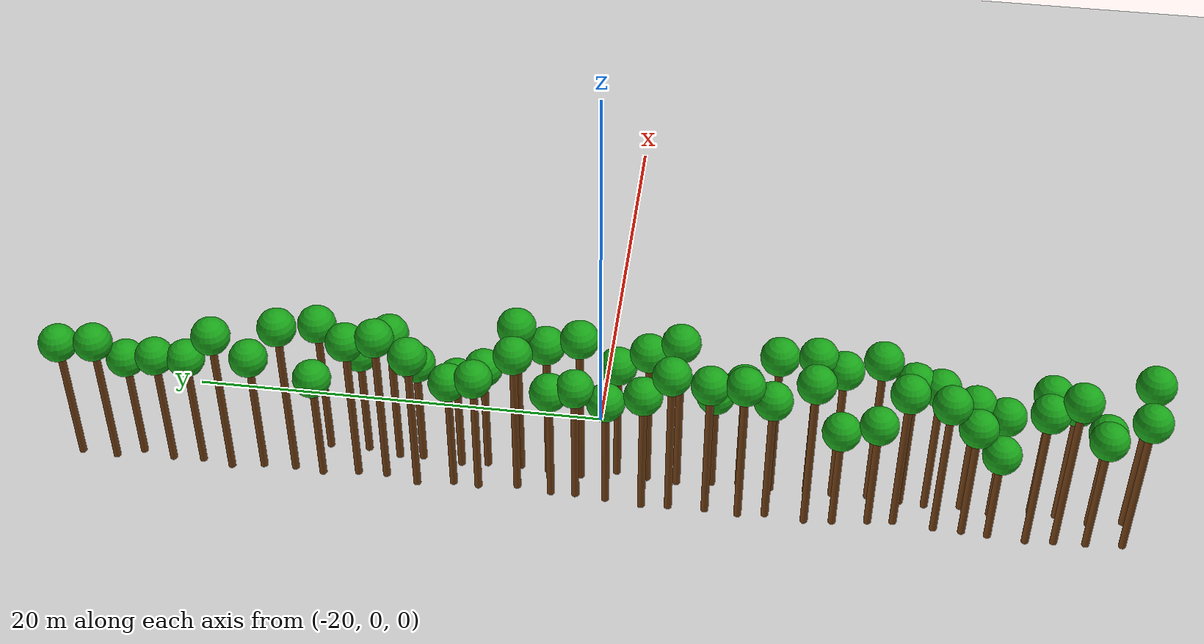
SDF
<sdf version="1.6">
 <world name="forest_world">
  <include><uri>model://sun</uri></include>
  <include><uri>model://ground_plane</uri></include>
  <model name="tree_0">
   <static>true</static>
   <link name="trunk">
    <collision name="collision">
     <pose>-24.88 -24.96 3.96 0 0 0</pose>
     <geometry><cylinder><radius>0.18</radius><length>7.92</length></cylinder></geometry>
    </collision>
    <visual name="trunk_visual">
     <pose>-24.88 -24.96 3.96 0 0 0</pose>
     <geometry><cylinder><radius>0.18</radius><length>7.92</length></cylinder></geometry>
     <material><ambient>0.35 0.20 0.05 1</ambient><diffuse>0.45 0.25 0.08 1</diffuse></material>
    </visual>
    <visual name="leaf_visual">
     <pose>-24.88 -24.96 8.37 0 0 0</pose>
     <geometry><sphere><radius>0.9</radius></sphere></geometry>
     <material><ambient>0.05 0.45 0.05 1</ambient><diffuse>0.10 0.65 0.10 1</diffuse></material>
    </visual>
   </link>
  </model>
  <model name="tree_1">
   <static>true</static>
   <link name="trunk">
    <collision name="collision">
     <pose>-25.00 -23.27 3.32 0 0 0</pose>
     <geometry><cylinder><radius>0.18</radius><length>6.64</length></cylinder></geometry>
    </collision>
    <visual name="trunk_visual">
     <pose>-25.00 -23.27 3.32 0 0 0</pose>
     <geometry><cylinder><radius>0.18</radius><length>6.64</length></cylinder></geometry>
     <material><ambient>0.35 0.20 0.05 1</ambient><diffuse>0.45 0.25 0.08 1</diffuse></material>
    </visual>
    <visual name="leaf_visual">
     <pose>-25.00 -23.27 7.09 0 0 0</pose>
     <geometry><sphere><radius>0.9</radius></sphere></geometry>
     <material><ambient>0.05 0.45 0.05 1</ambient><diffuse>0.10 0.65 0.10 1</diffuse></material>
    </visual>
   </link>
  </model>
  <model name="tree_2">
   <static>true</static>
   <link name="trunk">
    <collision name="collision">
     <pose>-25.05 -21.80 4.49 0 0 0</pose>
     <geometry><cylinder><radius>0.18</radius><length>8.98</length></cylinder></geometry>
    </collision>
    <visual name="trunk_visual">
     <pose>-25.05 -21.80 4.49 0 0 0</pose>
     <geometry><cylinder><radius>0.18</radius><length>8.98</length></cylinder></geometry>
     <material><ambient>0.35 0.20 0.05 1</ambient><diffuse>0.45 0.25 0.08 1</diffuse></material>
    </visual>
    <visual name="leaf_visual">
     <pose>-25.05 -21.80 9.43 0 0 0</pose>
     <geometry><sphere><radius>0.9</radius></sphere></geometry>
     <material><ambient>0.05 0.45 0.05 1</ambient><diffuse>0.10 0.65 0.10 1</diffuse></material>
    </visual>
   </link>
  </model>
  <model name="tree_3">
   <static>true</static>
   <link name="trunk">
    <collision name="collision">
     <pose>-25.14 -20.49 4.09 0 0 0</pose>
     <geometry><cylinder><radius>0.18</radius><length>8.19</length></cylinder></geometry>
    </collision>
    <visual name="trunk_visual">
     <pose>-25.14 -20.49 4.09 0 0 0</pose>
     <geometry><cylinder><radius>0.18</radius><length>8.19</length></cylinder></geometry>
     <material><ambient>0.35 0.20 0.05 1</ambient><diffuse>0.45 0.25 0.08 1</diffuse></material>
    </visual>
    <visual name="leaf_visual">
     <pose>-25.14 -20.49 8.64 0 0 0</pose>
     <geometry><sphere><radius>0.9</radius></sphere></geometry>
     <material><ambient>0.05 0.45 0.05 1</ambient><diffuse>0.10 0.65 0.10 1</diffuse></material>
    </visual>
   </link>
  </model>
  <model name="tree_4">
   <static>true</static>
   <link name="trunk">
    <collision name="collision">
     <pose>-25.03 -18.75 2.57 0 0 0</pose>
     <geometry><cylinder><radius>0.18</radius><length>5.14</length></cylinder></geometry>
    </collision>
    <visual name="trunk_visual">
     <pose>-25.03 -18.75 2.57 0 0 0</pose>
     <geometry><cylinder><radius>0.18</radius><length>5.14</length></cylinder></geometry>
     <material><ambient>0.35 0.20 0.05 1</ambient><diffuse>0.45 0.25 0.08 1</diffuse></material>
    </visual>
    <visual name="leaf_visual">
     <pose>-25.03 -18.75 5.59 0 0 0</pose>
     <geometry><sphere><radius>0.9</radius></sphere></geometry>
     <material><ambient>0.05 0.45 0.05 1</ambient><diffuse>0.10 0.65 0.10 1</diffuse></material>
    </visual>
   </link>
  </model>
  <model name="tree_5">
   <static>true</static>
   <link name="trunk">
    <collision name="collision">
     <pose>-24.94 -17.55 3.31 0 0 0</pose>
     <geometry><cylinder><radius>0.18</radius><length>6.62</length></cylinder></geometry>
    </collision>
    <visual name="trunk_visual">
     <pose>-24.94 -17.55 3.31 0 0 0</pose>
     <geometry><cylinder><radius>0.18</radius><length>6.62</length></cylinder></geometry>
     <material><ambient>0.35 0.20 0.05 1</ambient><diffuse>0.45 0.25 0.08 1</diffuse></material>
    </visual>
    <visual name="leaf_visual">
     <pose>-24.94 -17.55 7.07 0 0 0</pose>
     <geometry><sphere><radius>0.9</radius></sphere></geometry>
     <material><ambient>0.05 0.45 0.05 1</ambient><diffuse>0.10 0.65 0.10 1</diffuse></material>
    </visual>
   </link>
  </model>
  <model name="tree_6">
   <static>true</static>
   <link name="trunk">
    <collision name="collision">
     <pose>-24.91 -16.24 3.97 0 0 0</pose>
     <geometry><cylinder><radius>0.18</radius><length>7.94</length></cylinder></geometry>
    </collision>
    <visual name="trunk_visual">
     <pose>-24.91 -16.24 3.97 0 0 0</pose>
     <geometry><cylinder><radius>0.18</radius><length>7.94</length></cylinder></geometry>
     <material><ambient>0.35 0.20 0.05 1</ambient><diffuse>0.45 0.25 0.08 1</diffuse></material>
    </visual>
    <visual name="leaf_visual">
     <pose>-24.91 -16.24 8.39 0 0 0</pose>
     <geometry><sphere><radius>0.9</radius></sphere></geometry>
     <material><ambient>0.05 0.45 0.05 1</ambient><diffuse>0.10 0.65 0.10 1</diffuse></material>
    </visual>
   </link>
  </model>
  <model name="tree_7">
   <static>true</static>
   <link name="trunk">
    <collision name="collision">
     <pose>-24.75 -14.36 4.12 0 0 0</pose>
     <geometry><cylinder><radius>0.18</radius><length>8.24</length></cylinder></geometry>
    </collision>
    <visual name="trunk_visual">
     <pose>-24.75 -14.36 4.12 0 0 0</pose>
     <geometry><cylinder><radius>0.18</radius><length>8.24</length></cylinder></geometry>
     <material><ambient>0.35 0.20 0.05 1</ambient><diffuse>0.45 0.25 0.08 1</diffuse></material>
    </visual>
    <visual name="leaf_visual">
     <pose>-24.75 -14.36 8.69 0 0 0</pose>
     <geometry><sphere><radius>0.9</radius></sphere></geometry>
     <material><ambient>0.05 0.45 0.05 1</ambient><diffuse>0.10 0.65 0.10 1</diffuse></material>
    </visual>
   </link>
  </model>
  <model name="tree_8">
   <static>true</static>
   <link name="trunk">
    <collision name="collision">
     <pose>-24.87 -13.18 3.07 0 0 0</pose>
     <geometry><cylinder><radius>0.18</radius><length>6.14</length></cylinder></geometry>
    </collision>
    <visual name="trunk_visual">
     <pose>-24.87 -13.18 3.07 0 0 0</pose>
     <geometry><cylinder><radius>0.18</radius><length>6.14</length></cylinder></geometry>
     <material><ambient>0.35 0.20 0.05 1</ambient><diffuse>0.45 0.25 0.08 1</diffuse></material>
    </visual>
    <visual name="leaf_visual">
     <pose>-24.87 -13.18 6.59 0 0 0</pose>
     <geometry><sphere><radius>0.9</radius></sphere></geometry>
     <material><ambient>0.05 0.45 0.05 1</ambient><diffuse>0.10 0.65 0.10 1</diffuse></material>
    </visual>
   </link>
  </model>
  <model name="tree_9">
   <static>true</static>
   <link name="trunk">
    <collision name="collision">
     <pose>-25.08 -11.53 2.87 0 0 0</pose>
     <geometry><cylinder><radius>0.18</radius><length>5.75</length></cylinder></geometry>
    </collision>
    <visual name="trunk_visual">
     <pose>-25.08 -11.53 2.87 0 0 0</pose>
     <geometry><cylinder><radius>0.18</radius><length>5.75</length></cylinder></geometry>
     <material><ambient>0.35 0.20 0.05 1</ambient><diffuse>0.45 0.25 0.08 1</diffuse></material>
    </visual>
    <visual name="leaf_visual">
     <pose>-25.08 -11.53 6.20 0 0 0</pose>
     <geometry><sphere><radius>0.9</radius></sphere></geometry>
     <material><ambient>0.05 0.45 0.05 1</ambient><diffuse>0.10 0.65 0.10 1</diffuse></material>
    </visual>
   </link>
  </model>
  <model name="tree_10">
   <static>true</static>
   <link name="trunk">
    <collision name="collision">
     <pose>-25.20 -10.22 4.39 0 0 0</pose>
     <geometry><cylinder><radius>0.18</radius><length>8.78</length></cylinder></geometry>
    </collision>
    <visual name="trunk_visual">
     <pose>-25.20 -10.22 4.39 0 0 0</pose>
     <geometry><cylinder><radius>0.18</radius><length>8.78</length></cylinder></geometry>
     <material><ambient>0.35 0.20 0.05 1</ambient><diffuse>0.45 0.25 0.08 1</diffuse></material>
    </visual>
    <visual name="leaf_visual">
     <pose>-25.20 -10.22 9.23 0 0 0</pose>
     <geometry><sphere><radius>0.9</radius></sphere></geometry>
     <material><ambient>0.05 0.45 0.05 1</ambient><diffuse>0.10 0.65 0.10 1</diffuse></material>
    </visual>
   </link>
  </model>
  <model name="tree_11">
   <static>true</static>
   <link name="trunk">
    <collision name="collision">
     <pose>-25.04 -8.38 3.65 0 0 0</pose>
     <geometry><cylinder><radius>0.18</radius><length>7.29</length></cylinder></geometry>
    </collision>
    <visual name="trunk_visual">
     <pose>-25.04 -8.38 3.65 0 0 0</pose>
     <geometry><cylinder><radius>0.18</radius><length>7.29</length></cylinder></geometry>
     <material><ambient>0.35 0.20 0.05 1</ambient><diffuse>0.45 0.25 0.08 1</diffuse></material>
    </visual>
    <visual name="leaf_visual">
     <pose>-25.04 -8.38 7.74 0 0 0</pose>
     <geometry><sphere><radius>0.9</radius></sphere></geometry>
     <material><ambient>0.05 0.45 0.05 1</ambient><diffuse>0.10 0.65 0.10 1</diffuse></material>
    </visual>
   </link>
  </model>
  <model name="tree_12">
   <static>true</static>
   <link name="trunk">
    <collision name="collision">
     <pose>-25.20 -7.11 4.11 0 0 0</pose>
     <geometry><cylinder><radius>0.18</radius><length>8.22</length></cylinder></geometry>
    </collision>
    <visual name="trunk_visual">
     <pose>-25.20 -7.11 4.11 0 0 0</pose>
     <geometry><cylinder><radius>0.18</radius><length>8.22</length></cylinder></geometry>
     <material><ambient>0.35 0.20 0.05 1</ambient><diffuse>0.45 0.25 0.08 1</diffuse></material>
    </visual>
    <visual name="leaf_visual">
     <pose>-25.20 -7.11 8.67 0 0 0</pose>
     <geometry><sphere><radius>0.9</radius></sphere></geometry>
     <material><ambient>0.05 0.45 0.05 1</ambient><diffuse>0.10 0.65 0.10 1</diffuse></material>
    </visual>
   </link>
  </model>
  <model name="tree_13">
   <static>true</static>
   <link name="trunk">
    <collision name="collision">
     <pose>-25.10 -5.55 3.99 0 0 0</pose>
     <geometry><cylinder><radius>0.18</radius><length>7.98</length></cylinder></geometry>
    </collision>
    <visual name="trunk_visual">
     <pose>-25.10 -5.55 3.99 0 0 0</pose>
     <geometry><cylinder><radius>0.18</radius><length>7.98</length></cylinder></geometry>
     <material><ambient>0.35 0.20 0.05 1</ambient><diffuse>0.45 0.25 0.08 1</diffuse></material>
    </visual>
    <visual name="leaf_visual">
     <pose>-25.10 -5.55 8.43 0 0 0</pose>
     <geometry><sphere><radius>0.9</radius></sphere></geometry>
     <material><ambient>0.05 0.45 0.05 1</ambient><diffuse>0.10 0.65 0.10 1</diffuse></material>
    </visual>
   </link>
  </model>
  <model name="tree_14">
   <static>true</static>
   <link name="trunk">
    <collision name="collision">
     <pose>-25.12 -3.82 4.18 0 0 0</pose>
     <geometry><cylinder><radius>0.18</radius><length>8.36</length></cylinder></geometry>
    </collision>
    <visual name="trunk_visual">
     <pose>-25.12 -3.82 4.18 0 0 0</pose>
     <geometry><cylinder><radius>0.18</radius><length>8.36</length></cylinder></geometry>
     <material><ambient>0.35 0.20 0.05 1</ambient><diffuse>0.45 0.25 0.08 1</diffuse></material>
    </visual>
    <visual name="leaf_visual">
     <pose>-25.12 -3.82 8.81 0 0 0</pose>
     <geometry><sphere><radius>0.9</radius></sphere></geometry>
     <material><ambient>0.05 0.45 0.05 1</ambient><diffuse>0.10 0.65 0.10 1</diffuse></material>
    </visual>
   </link>
  </model>
  <model name="tree_15">
   <static>true</static>
   <link name="trunk">
    <collision name="collision">
     <pose>-25.21 -2.56 3.51 0 0 0</pose>
     <geometry><cylinder><radius>0.18</radius><length>7.01</length></cylinder></geometry>
    </collision>
    <visual name="trunk_visual">
     <pose>-25.21 -2.56 3.51 0 0 0</pose>
     <geometry><cylinder><radius>0.18</radius><length>7.01</length></cylinder></geometry>
     <material><ambient>0.35 0.20 0.05 1</ambient><diffuse>0.45 0.25 0.08 1</diffuse></material>
    </visual>
    <visual name="leaf_visual">
     <pose>-25.21 -2.56 7.46 0 0 0</pose>
     <geometry><sphere><radius>0.9</radius></sphere></geometry>
     <material><ambient>0.05 0.45 0.05 1</ambient><diffuse>0.10 0.65 0.10 1</diffuse></material>
    </visual>
   </link>
  </model>
  <model name="tree_16">
   <static>true</static>
   <link name="trunk">
    <collision name="collision">
     <pose>-25.03 -0.84 3.09 0 0 0</pose>
     <geometry><cylinder><radius>0.18</radius><length>6.18</length></cylinder></geometry>
    </collision>
    <visual name="trunk_visual">
     <pose>-25.03 -0.84 3.09 0 0 0</pose>
     <geometry><cylinder><radius>0.18</radius><length>6.18</length></cylinder></geometry>
     <material><ambient>0.35 0.20 0.05 1</ambient><diffuse>0.45 0.25 0.08 1</diffuse></material>
    </visual>
    <visual name="leaf_visual">
     <pose>-25.03 -0.84 6.63 0 0 0</pose>
     <geometry><sphere><radius>0.9</radius></sphere></geometry>
     <material><ambient>0.05 0.45 0.05 1</ambient><diffuse>0.10 0.65 0.10 1</diffuse></material>
    </visual>
   </link>
  </model>
  <model name="tree_17">
   <static>true</static>
   <link name="trunk">
    <collision name="collision">
     <pose>-24.92 0.60 3.38 0 0 0</pose>
     <geometry><cylinder><radius>0.18</radius><length>6.77</length></cylinder></geometry>
    </collision>
    <visual name="trunk_visual">
     <pose>-24.92 0.60 3.38 0 0 0</pose>
     <geometry><cylinder><radius>0.18</radius><length>6.77</length></cylinder></geometry>
     <material><ambient>0.35 0.20 0.05 1</ambient><diffuse>0.45 0.25 0.08 1</diffuse></material>
    </visual>
    <visual name="leaf_visual">
     <pose>-24.92 0.60 7.22 0 0 0</pose>
     <geometry><sphere><radius>0.9</radius></sphere></geometry>
     <material><ambient>0.05 0.45 0.05 1</ambient><diffuse>0.10 0.65 0.10 1</diffuse></material>
    </visual>
   </link>
  </model>
  <model name="tree_18">
   <static>true</static>
   <link name="trunk">
    <collision name="collision">
     <pose>-24.95 1.77 3.20 0 0 0</pose>
     <geometry><cylinder><radius>0.18</radius><length>6.41</length></cylinder></geometry>
    </collision>
    <visual name="trunk_visual">
     <pose>-24.95 1.77 3.20 0 0 0</pose>
     <geometry><cylinder><radius>0.18</radius><length>6.41</length></cylinder></geometry>
     <material><ambient>0.35 0.20 0.05 1</ambient><diffuse>0.45 0.25 0.08 1</diffuse></material>
    </visual>
    <visual name="leaf_visual">
     <pose>-24.95 1.77 6.86 0 0 0</pose>
     <geometry><sphere><radius>0.9</radius></sphere></geometry>
     <material><ambient>0.05 0.45 0.05 1</ambient><diffuse>0.10 0.65 0.10 1</diffuse></material>
    </visual>
   </link>
  </model>
  <model name="tree_19">
   <static>true</static>
   <link name="trunk">
    <collision name="collision">
     <pose>-24.75 3.40 4.20 0 0 0</pose>
     <geometry><cylinder><radius>0.18</radius><length>8.40</length></cylinder></geometry>
    </collision>
    <visual name="trunk_visual">
     <pose>-24.75 3.40 4.20 0 0 0</pose>
     <geometry><cylinder><radius>0.18</radius><length>8.40</length></cylinder></geometry>
     <material><ambient>0.35 0.20 0.05 1</ambient><diffuse>0.45 0.25 0.08 1</diffuse></material>
    </visual>
    <visual name="leaf_visual">
     <pose>-24.75 3.40 8.85 0 0 0</pose>
     <geometry><sphere><radius>0.9</radius></sphere></geometry>
     <material><ambient>0.05 0.45 0.05 1</ambient><diffuse>0.10 0.65 0.10 1</diffuse></material>
    </visual>
   </link>
  </model>
  <model name="tree_20">
   <static>true</static>
   <link name="trunk">
    <collision name="collision">
     <pose>-24.97 5.24 3.43 0 0 0</pose>
     <geometry><cylinder><radius>0.18</radius><length>6.85</length></cylinder></geometry>
    </collision>
    <visual name="trunk_visual">
     <pose>-24.97 5.24 3.43 0 0 0</pose>
     <geometry><cylinder><radius>0.18</radius><length>6.85</length></cylinder></geometry>
     <material><ambient>0.35 0.20 0.05 1</ambient><diffuse>0.45 0.25 0.08 1</diffuse></material>
    </visual>
    <visual name="leaf_visual">
     <pose>-24.97 5.24 7.30 0 0 0</pose>
     <geometry><sphere><radius>0.9</radius></sphere></geometry>
     <material><ambient>0.05 0.45 0.05 1</ambient><diffuse>0.10 0.65 0.10 1</diffuse></material>
    </visual>
   </link>
  </model>
  <model name="tree_21">
   <static>true</static>
   <link name="trunk">
    <collision name="collision">
     <pose>-24.89 6.44 3.20 0 0 0</pose>
     <geometry><cylinder><radius>0.18</radius><length>6.39</length></cylinder></geometry>
    </collision>
    <visual name="trunk_visual">
     <pose>-24.89 6.44 3.20 0 0 0</pose>
     <geometry><cylinder><radius>0.18</radius><length>6.39</length></cylinder></geometry>
     <material><ambient>0.35 0.20 0.05 1</ambient><diffuse>0.45 0.25 0.08 1</diffuse></material>
    </visual>
    <visual name="leaf_visual">
     <pose>-24.89 6.44 6.84 0 0 0</pose>
     <geometry><sphere><radius>0.9</radius></sphere></geometry>
     <material><ambient>0.05 0.45 0.05 1</ambient><diffuse>0.10 0.65 0.10 1</diffuse></material>
    </visual>
   </link>
  </model>
  <model name="tree_22">
   <static>true</static>
   <link name="trunk">
    <collision name="collision">
     <pose>-25.14 8.16 4.05 0 0 0</pose>
     <geometry><cylinder><radius>0.18</radius><length>8.10</length></cylinder></geometry>
    </collision>
    <visual name="trunk_visual">
     <pose>-25.14 8.16 4.05 0 0 0</pose>
     <geometry><cylinder><radius>0.18</radius><length>8.10</length></cylinder></geometry>
     <material><ambient>0.35 0.20 0.05 1</ambient><diffuse>0.45 0.25 0.08 1</diffuse></material>
    </visual>
    <visual name="leaf_visual">
     <pose>-25.14 8.16 8.55 0 0 0</pose>
     <geometry><sphere><radius>0.9</radius></sphere></geometry>
     <material><ambient>0.05 0.45 0.05 1</ambient><diffuse>0.10 0.65 0.10 1</diffuse></material>
    </visual>
   </link>
  </model>
  <model name="tree_23">
   <static>true</static>
   <link name="trunk">
    <collision name="collision">
     <pose>-24.80 9.70 4.37 0 0 0</pose>
     <geometry><cylinder><radius>0.18</radius><length>8.74</length></cylinder></geometry>
    </collision>
    <visual name="trunk_visual">
     <pose>-24.80 9.70 4.37 0 0 0</pose>
     <geometry><cylinder><radius>0.18</radius><length>8.74</length></cylinder></geometry>
     <material><ambient>0.35 0.20 0.05 1</ambient><diffuse>0.45 0.25 0.08 1</diffuse></material>
    </visual>
    <visual name="leaf_visual">
     <pose>-24.80 9.70 9.19 0 0 0</pose>
     <geometry><sphere><radius>0.9</radius></sphere></geometry>
     <material><ambient>0.05 0.45 0.05 1</ambient><diffuse>0.10 0.65 0.10 1</diffuse></material>
    </visual>
   </link>
  </model>
  <model name="tree_24">
   <static>true</static>
   <link name="trunk">
    <collision name="collision">
     <pose>-24.83 11.06 4.17 0 0 0</pose>
     <geometry><cylinder><radius>0.18</radius><length>8.35</length></cylinder></geometry>
    </collision>
    <visual name="trunk_visual">
     <pose>-24.83 11.06 4.17 0 0 0</pose>
     <geometry><cylinder><radius>0.18</radius><length>8.35</length></cylinder></geometry>
     <material><ambient>0.35 0.20 0.05 1</ambient><diffuse>0.45 0.25 0.08 1</diffuse></material>
    </visual>
    <visual name="leaf_visual">
     <pose>-24.83 11.06 8.80 0 0 0</pose>
     <geometry><sphere><radius>0.9</radius></sphere></geometry>
     <material><ambient>0.05 0.45 0.05 1</ambient><diffuse>0.10 0.65 0.10 1</diffuse></material>
    </visual>
   </link>
  </model>
  <model name="tree_25">
   <static>true</static>
   <link name="trunk">
    <collision name="collision">
     <pose>-25.05 12.74 3.00 0 0 0</pose>
     <geometry><cylinder><radius>0.18</radius><length>5.99</length></cylinder></geometry>
    </collision>
    <visual name="trunk_visual">
     <pose>-25.05 12.74 3.00 0 0 0</pose>
     <geometry><cylinder><radius>0.18</radius><length>5.99</length></cylinder></geometry>
     <material><ambient>0.35 0.20 0.05 1</ambient><diffuse>0.45 0.25 0.08 1</diffuse></material>
    </visual>
    <visual name="leaf_visual">
     <pose>-25.05 12.74 6.44 0 0 0</pose>
     <geometry><sphere><radius>0.9</radius></sphere></geometry>
     <material><ambient>0.05 0.45 0.05 1</ambient><diffuse>0.10 0.65 0.10 1</diffuse></material>
    </visual>
   </link>
  </model>
  <model name="tree_26">
   <static>true</static>
   <link name="trunk">
    <collision name="collision">
     <pose>-24.89 14.12 4.48 0 0 0</pose>
     <geometry><cylinder><radius>0.18</radius><length>8.96</length></cylinder></geometry>
    </collision>
    <visual name="trunk_visual">
     <pose>-24.89 14.12 4.48 0 0 0</pose>
     <geometry><cylinder><radius>0.18</radius><length>8.96</length></cylinder></geometry>
     <material><ambient>0.35 0.20 0.05 1</ambient><diffuse>0.45 0.25 0.08 1</diffuse></material>
    </visual>
    <visual name="leaf_visual">
     <pose>-24.89 14.12 9.41 0 0 0</pose>
     <geometry><sphere><radius>0.9</radius></sphere></geometry>
     <material><ambient>0.05 0.45 0.05 1</ambient><diffuse>0.10 0.65 0.10 1</diffuse></material>
    </visual>
   </link>
  </model>
  <model name="tree_27">
   <static>true</static>
   <link name="trunk">
    <collision name="collision">
     <pose>-24.93 15.65 3.42 0 0 0</pose>
     <geometry><cylinder><radius>0.18</radius><length>6.83</length></cylinder></geometry>
    </collision>
    <visual name="trunk_visual">
     <pose>-24.93 15.65 3.42 0 0 0</pose>
     <geometry><cylinder><radius>0.18</radius><length>6.83</length></cylinder></geometry>
     <material><ambient>0.35 0.20 0.05 1</ambient><diffuse>0.45 0.25 0.08 1</diffuse></material>
    </visual>
    <visual name="leaf_visual">
     <pose>-24.93 15.65 7.28 0 0 0</pose>
     <geometry><sphere><radius>0.9</radius></sphere></geometry>
     <material><ambient>0.05 0.45 0.05 1</ambient><diffuse>0.10 0.65 0.10 1</diffuse></material>
    </visual>
   </link>
  </model>
  <model name="tree_28">
   <static>true</static>
   <link name="trunk">
    <collision name="collision">
     <pose>-25.17 17.17 4.15 0 0 0</pose>
     <geometry><cylinder><radius>0.18</radius><length>8.31</length></cylinder></geometry>
    </collision>
    <visual name="trunk_visual">
     <pose>-25.17 17.17 4.15 0 0 0</pose>
     <geometry><cylinder><radius>0.18</radius><length>8.31</length></cylinder></geometry>
     <material><ambient>0.35 0.20 0.05 1</ambient><diffuse>0.45 0.25 0.08 1</diffuse></material>
    </visual>
    <visual name="leaf_visual">
     <pose>-25.17 17.17 8.76 0 0 0</pose>
     <geometry><sphere><radius>0.9</radius></sphere></geometry>
     <material><ambient>0.05 0.45 0.05 1</ambient><diffuse>0.10 0.65 0.10 1</diffuse></material>
    </visual>
   </link>
  </model>
  <model name="tree_29">
   <static>true</static>
   <link name="trunk">
    <collision name="collision">
     <pose>-24.95 18.63 3.23 0 0 0</pose>
     <geometry><cylinder><radius>0.18</radius><length>6.47</length></cylinder></geometry>
    </collision>
    <visual name="trunk_visual">
     <pose>-24.95 18.63 3.23 0 0 0</pose>
     <geometry><cylinder><radius>0.18</radius><length>6.47</length></cylinder></geometry>
     <material><ambient>0.35 0.20 0.05 1</ambient><diffuse>0.45 0.25 0.08 1</diffuse></material>
    </visual>
    <visual name="leaf_visual">
     <pose>-24.95 18.63 6.92 0 0 0</pose>
     <geometry><sphere><radius>0.9</radius></sphere></geometry>
     <material><ambient>0.05 0.45 0.05 1</ambient><diffuse>0.10 0.65 0.10 1</diffuse></material>
    </visual>
   </link>
  </model>
  <model name="tree_30">
   <static>true</static>
   <link name="trunk">
    <collision name="collision">
     <pose>-25.01 20.08 3.24 0 0 0</pose>
     <geometry><cylinder><radius>0.18</radius><length>6.48</length></cylinder></geometry>
    </collision>
    <visual name="trunk_visual">
     <pose>-25.01 20.08 3.24 0 0 0</pose>
     <geometry><cylinder><radius>0.18</radius><length>6.48</length></cylinder></geometry>
     <material><ambient>0.35 0.20 0.05 1</ambient><diffuse>0.45 0.25 0.08 1</diffuse></material>
    </visual>
    <visual name="leaf_visual">
     <pose>-25.01 20.08 6.93 0 0 0</pose>
     <geometry><sphere><radius>0.9</radius></sphere></geometry>
     <material><ambient>0.05 0.45 0.05 1</ambient><diffuse>0.10 0.65 0.10 1</diffuse></material>
    </visual>
   </link>
  </model>
  <model name="tree_31">
   <static>true</static>
   <link name="trunk">
    <collision name="collision">
     <pose>-24.75 21.60 2.95 0 0 0</pose>
     <geometry><cylinder><radius>0.18</radius><length>5.90</length></cylinder></geometry>
    </collision>
    <visual name="trunk_visual">
     <pose>-24.75 21.60 2.95 0 0 0</pose>
     <geometry><cylinder><radius>0.18</radius><length>5.90</length></cylinder></geometry>
     <material><ambient>0.35 0.20 0.05 1</ambient><diffuse>0.45 0.25 0.08 1</diffuse></material>
    </visual>
    <visual name="leaf_visual">
     <pose>-24.75 21.60 6.35 0 0 0</pose>
     <geometry><sphere><radius>0.9</radius></sphere></geometry>
     <material><ambient>0.05 0.45 0.05 1</ambient><diffuse>0.10 0.65 0.10 1</diffuse></material>
    </visual>
   </link>
  </model>
  <model name="tree_32">
   <static>true</static>
   <link name="trunk">
    <collision name="collision">
     <pose>-25.21 22.82 3.62 0 0 0</pose>
     <geometry><cylinder><radius>0.18</radius><length>7.24</length></cylinder></geometry>
    </collision>
    <visual name="trunk_visual">
     <pose>-25.21 22.82 3.62 0 0 0</pose>
     <geometry><cylinder><radius>0.18</radius><length>7.24</length></cylinder></geometry>
     <material><ambient>0.35 0.20 0.05 1</ambient><diffuse>0.45 0.25 0.08 1</diffuse></material>
    </visual>
    <visual name="leaf_visual">
     <pose>-25.21 22.82 7.69 0 0 0</pose>
     <geometry><sphere><radius>0.9</radius></sphere></geometry>
     <material><ambient>0.05 0.45 0.05 1</ambient><diffuse>0.10 0.65 0.10 1</diffuse></material>
    </visual>
   </link>
  </model>
  <model name="tree_33">
   <static>true</static>
   <link name="trunk">
    <collision name="collision">
     <pose>-25.12 24.55 3.44 0 0 0</pose>
     <geometry><cylinder><radius>0.18</radius><length>6.89</length></cylinder></geometry>
    </collision>
    <visual name="trunk_visual">
     <pose>-25.12 24.55 3.44 0 0 0</pose>
     <geometry><cylinder><radius>0.18</radius><length>6.89</length></cylinder></geometry>
     <material><ambient>0.35 0.20 0.05 1</ambient><diffuse>0.45 0.25 0.08 1</diffuse></material>
    </visual>
    <visual name="leaf_visual">
     <pose>-25.12 24.55 7.34 0 0 0</pose>
     <geometry><sphere><radius>0.9</radius></sphere></geometry>
     <material><ambient>0.05 0.45 0.05 1</ambient><diffuse>0.10 0.65 0.10 1</diffuse></material>
    </visual>
   </link>
  </model>
  <model name="tree_34">
   <static>true</static>
   <link name="trunk">
    <collision name="collision">
     <pose>-23.46 -25.02 4.41 0 0 0</pose>
     <geometry><cylinder><radius>0.18</radius><length>8.81</length></cylinder></geometry>
    </collision>
    <visual name="trunk_visual">
     <pose>-23.46 -25.02 4.41 0 0 0</pose>
     <geometry><cylinder><radius>0.18</radius><length>8.81</length></cylinder></geometry>
     <material><ambient>0.35 0.20 0.05 1</ambient><diffuse>0.45 0.25 0.08 1</diffuse></material>
    </visual>
    <visual name="leaf_visual">
     <pose>-23.46 -25.02 9.26 0 0 0</pose>
     <geometry><sphere><radius>0.9</radius></sphere></geometry>
     <material><ambient>0.05 0.45 0.05 1</ambient><diffuse>0.10 0.65 0.10 1</diffuse></material>
    </visual>
   </link>
  </model>
  <model name="tree_35">
   <static>true</static>
   <link name="trunk">
    <collision name="collision">
     <pose>-23.72 -23.42 2.88 0 0 0</pose>
     <geometry><cylinder><radius>0.18</radius><length>5.76</length></cylinder></geometry>
    </collision>
    <visual name="trunk_visual">
     <pose>-23.72 -23.42 2.88 0 0 0</pose>
     <geometry><cylinder><radius>0.18</radius><length>5.76</length></cylinder></geometry>
     <material><ambient>0.35 0.20 0.05 1</ambient><diffuse>0.45 0.25 0.08 1</diffuse></material>
    </visual>
    <visual name="leaf_visual">
     <pose>-23.72 -23.42 6.21 0 0 0</pose>
     <geometry><sphere><radius>0.9</radius></sphere></geometry>
     <material><ambient>0.05 0.45 0.05 1</ambient><diffuse>0.10 0.65 0.10 1</diffuse></material>
    </visual>
   </link>
  </model>
  <model name="tree_36">
   <static>true</static>
   <link name="trunk">
    <collision name="collision">
     <pose>-23.43 -21.91 3.51 0 0 0</pose>
     <geometry><cylinder><radius>0.18</radius><length>7.02</length></cylinder></geometry>
    </collision>
    <visual name="trunk_visual">
     <pose>-23.43 -21.91 3.51 0 0 0</pose>
     <geometry><cylinder><radius>0.18</radius><length>7.02</length></cylinder></geometry>
     <material><ambient>0.35 0.20 0.05 1</ambient><diffuse>0.45 0.25 0.08 1</diffuse></material>
    </visual>
    <visual name="leaf_visual">
     <pose>-23.43 -21.91 7.47 0 0 0</pose>
     <geometry><sphere><radius>0.9</radius></sphere></geometry>
     <material><ambient>0.05 0.45 0.05 1</ambient><diffuse>0.10 0.65 0.10 1</diffuse></material>
    </visual>
   </link>
  </model>
  <model name="tree_37">
   <static>true</static>
   <link name="trunk">
    <collision name="collision">
     <pose>-23.36 -20.73 3.79 0 0 0</pose>
     <geometry><cylinder><radius>0.18</radius><length>7.57</length></cylinder></geometry>
    </collision>
    <visual name="trunk_visual">
     <pose>-23.36 -20.73 3.79 0 0 0</pose>
     <geometry><cylinder><radius>0.18</radius><length>7.57</length></cylinder></geometry>
     <material><ambient>0.35 0.20 0.05 1</ambient><diffuse>0.45 0.25 0.08 1</diffuse></material>
    </visual>
    <visual name="leaf_visual">
     <pose>-23.36 -20.73 8.02 0 0 0</pose>
     <geometry><sphere><radius>0.9</radius></sphere></geometry>
     <material><ambient>0.05 0.45 0.05 1</ambient><diffuse>0.10 0.65 0.10 1</diffuse></material>
    </visual>
   </link>
  </model>
  <model name="tree_38">
   <static>true</static>
   <link name="trunk">
    <collision name="collision">
     <pose>-23.69 -18.84 3.12 0 0 0</pose>
     <geometry><cylinder><radius>0.18</radius><length>6.23</length></cylinder></geometry>
    </collision>
    <visual name="trunk_visual">
     <pose>-23.69 -18.84 3.12 0 0 0</pose>
     <geometry><cylinder><radius>0.18</radius><length>6.23</length></cylinder></geometry>
     <material><ambient>0.35 0.20 0.05 1</ambient><diffuse>0.45 0.25 0.08 1</diffuse></material>
    </visual>
    <visual name="leaf_visual">
     <pose>-23.69 -18.84 6.68 0 0 0</pose>
     <geometry><sphere><radius>0.9</radius></sphere></geometry>
     <material><ambient>0.05 0.45 0.05 1</ambient><diffuse>0.10 0.65 0.10 1</diffuse></material>
    </visual>
   </link>
  </model>
  <model name="tree_39">
   <static>true</static>
   <link name="trunk">
    <collision name="collision">
     <pose>-23.42 -17.47 3.27 0 0 0</pose>
     <geometry><cylinder><radius>0.18</radius><length>6.55</length></cylinder></geometry>
    </collision>
    <visual name="trunk_visual">
     <pose>-23.42 -17.47 3.27 0 0 0</pose>
     <geometry><cylinder><radius>0.18</radius><length>6.55</length></cylinder></geometry>
     <material><ambient>0.35 0.20 0.05 1</ambient><diffuse>0.45 0.25 0.08 1</diffuse></material>
    </visual>
    <visual name="leaf_visual">
     <pose>-23.42 -17.47 7.00 0 0 0</pose>
     <geometry><sphere><radius>0.9</radius></sphere></geometry>
     <material><ambient>0.05 0.45 0.05 1</ambient><diffuse>0.10 0.65 0.10 1</diffuse></material>
    </visual>
   </link>
  </model>
  <model name="tree_40">
   <static>true</static>
   <link name="trunk">
    <collision name="collision">
     <pose>-23.54 -15.79 3.76 0 0 0</pose>
     <geometry><cylinder><radius>0.18</radius><length>7.52</length></cylinder></geometry>
    </collision>
    <visual name="trunk_visual">
     <pose>-23.54 -15.79 3.76 0 0 0</pose>
     <geometry><cylinder><radius>0.18</radius><length>7.52</length></cylinder></geometry>
     <material><ambient>0.35 0.20 0.05 1</ambient><diffuse>0.45 0.25 0.08 1</diffuse></material>
    </visual>
    <visual name="leaf_visual">
     <pose>-23.54 -15.79 7.97 0 0 0</pose>
     <geometry><sphere><radius>0.9</radius></sphere></geometry>
     <material><ambient>0.05 0.45 0.05 1</ambient><diffuse>0.10 0.65 0.10 1</diffuse></material>
    </visual>
   </link>
  </model>
  <model name="tree_41">
   <static>true</static>
   <link name="trunk">
    <collision name="collision">
     <pose>-23.47 -14.62 3.85 0 0 0</pose>
     <geometry><cylinder><radius>0.18</radius><length>7.70</length></cylinder></geometry>
    </collision>
    <visual name="trunk_visual">
     <pose>-23.47 -14.62 3.85 0 0 0</pose>
     <geometry><cylinder><radius>0.18</radius><length>7.70</length></cylinder></geometry>
     <material><ambient>0.35 0.20 0.05 1</ambient><diffuse>0.45 0.25 0.08 1</diffuse></material>
    </visual>
    <visual name="leaf_visual">
     <pose>-23.47 -14.62 8.15 0 0 0</pose>
     <geometry><sphere><radius>0.9</radius></sphere></geometry>
     <material><ambient>0.05 0.45 0.05 1</ambient><diffuse>0.10 0.65 0.10 1</diffuse></material>
    </visual>
   </link>
  </model>
  <model name="tree_42">
   <static>true</static>
   <link name="trunk">
    <collision name="collision">
     <pose>-23.32 -13.11 4.35 0 0 0</pose>
     <geometry><cylinder><radius>0.18</radius><length>8.70</length></cylinder></geometry>
    </collision>
    <visual name="trunk_visual">
     <pose>-23.32 -13.11 4.35 0 0 0</pose>
     <geometry><cylinder><radius>0.18</radius><length>8.70</length></cylinder></geometry>
     <material><ambient>0.35 0.20 0.05 1</ambient><diffuse>0.45 0.25 0.08 1</diffuse></material>
    </visual>
    <visual name="leaf_visual">
     <pose>-23.32 -13.11 9.15 0 0 0</pose>
     <geometry><sphere><radius>0.9</radius></sphere></geometry>
     <material><ambient>0.05 0.45 0.05 1</ambient><diffuse>0.10 0.65 0.10 1</diffuse></material>
    </visual>
   </link>
  </model>
  <model name="tree_43">
   <static>true</static>
   <link name="trunk">
    <collision name="collision">
     <pose>-23.40 -11.43 3.98 0 0 0</pose>
     <geometry><cylinder><radius>0.18</radius><length>7.95</length></cylinder></geometry>
    </collision>
    <visual name="trunk_visual">
     <pose>-23.40 -11.43 3.98 0 0 0</pose>
     <geometry><cylinder><radius>0.18</radius><length>7.95</length></cylinder></geometry>
     <material><ambient>0.35 0.20 0.05 1</ambient><diffuse>0.45 0.25 0.08 1</diffuse></material>
    </visual>
    <visual name="leaf_visual">
     <pose>-23.40 -11.43 8.40 0 0 0</pose>
     <geometry><sphere><radius>0.9</radius></sphere></geometry>
     <material><ambient>0.05 0.45 0.05 1</ambient><diffuse>0.10 0.65 0.10 1</diffuse></material>
    </visual>
   </link>
  </model>
  <model name="tree_44">
   <static>true</static>
   <link name="trunk">
    <collision name="collision">
     <pose>-23.35 -10.22 4.29 0 0 0</pose>
     <geometry><cylinder><radius>0.18</radius><length>8.59</length></cylinder></geometry>
    </collision>
    <visual name="trunk_visual">
     <pose>-23.35 -10.22 4.29 0 0 0</pose>
     <geometry><cylinder><radius>0.18</radius><length>8.59</length></cylinder></geometry>
     <material><ambient>0.35 0.20 0.05 1</ambient><diffuse>0.45 0.25 0.08 1</diffuse></material>
    </visual>
    <visual name="leaf_visual">
     <pose>-23.35 -10.22 9.04 0 0 0</pose>
     <geometry><sphere><radius>0.9</radius></sphere></geometry>
     <material><ambient>0.05 0.45 0.05 1</ambient><diffuse>0.10 0.65 0.10 1</diffuse></material>
    </visual>
   </link>
  </model>
  <model name="tree_45">
   <static>true</static>
   <link name="trunk">
    <collision name="collision">
     <pose>-23.41 -8.50 4.24 0 0 0</pose>
     <geometry><cylinder><radius>0.18</radius><length>8.48</length></cylinder></geometry>
    </collision>
    <visual name="trunk_visual">
     <pose>-23.41 -8.50 4.24 0 0 0</pose>
     <geometry><cylinder><radius>0.18</radius><length>8.48</length></cylinder></geometry>
     <material><ambient>0.35 0.20 0.05 1</ambient><diffuse>0.45 0.25 0.08 1</diffuse></material>
    </visual>
    <visual name="leaf_visual">
     <pose>-23.41 -8.50 8.93 0 0 0</pose>
     <geometry><sphere><radius>0.9</radius></sphere></geometry>
     <material><ambient>0.05 0.45 0.05 1</ambient><diffuse>0.10 0.65 0.10 1</diffuse></material>
    </visual>
   </link>
  </model>
  <model name="tree_46">
   <static>true</static>
   <link name="trunk">
    <collision name="collision">
     <pose>-23.27 -7.01 3.19 0 0 0</pose>
     <geometry><cylinder><radius>0.18</radius><length>6.39</length></cylinder></geometry>
    </collision>
    <visual name="trunk_visual">
     <pose>-23.27 -7.01 3.19 0 0 0</pose>
     <geometry><cylinder><radius>0.18</radius><length>6.39</length></cylinder></geometry>
     <material><ambient>0.35 0.20 0.05 1</ambient><diffuse>0.45 0.25 0.08 1</diffuse></material>
    </visual>
    <visual name="leaf_visual">
     <pose>-23.27 -7.01 6.84 0 0 0</pose>
     <geometry><sphere><radius>0.9</radius></sphere></geometry>
     <material><ambient>0.05 0.45 0.05 1</ambient><diffuse>0.10 0.65 0.10 1</diffuse></material>
    </visual>
   </link>
  </model>
  <model name="tree_47">
   <static>true</static>
   <link name="trunk">
    <collision name="collision">
     <pose>-23.42 -5.72 2.81 0 0 0</pose>
     <geometry><cylinder><radius>0.18</radius><length>5.62</length></cylinder></geometry>
    </collision>
    <visual name="trunk_visual">
     <pose>-23.42 -5.72 2.81 0 0 0</pose>
     <geometry><cylinder><radius>0.18</radius><length>5.62</length></cylinder></geometry>
     <material><ambient>0.35 0.20 0.05 1</ambient><diffuse>0.45 0.25 0.08 1</diffuse></material>
    </visual>
    <visual name="leaf_visual">
     <pose>-23.42 -5.72 6.07 0 0 0</pose>
     <geometry><sphere><radius>0.9</radius></sphere></geometry>
     <material><ambient>0.05 0.45 0.05 1</ambient><diffuse>0.10 0.65 0.10 1</diffuse></material>
    </visual>
   </link>
  </model>
  <model name="tree_48">
   <static>true</static>
   <link name="trunk">
    <collision name="collision">
     <pose>-23.57 -4.07 4.46 0 0 0</pose>
     <geometry><cylinder><radius>0.18</radius><length>8.91</length></cylinder></geometry>
    </collision>
    <visual name="trunk_visual">
     <pose>-23.57 -4.07 4.46 0 0 0</pose>
     <geometry><cylinder><radius>0.18</radius><length>8.91</length></cylinder></geometry>
     <material><ambient>0.35 0.20 0.05 1</ambient><diffuse>0.45 0.25 0.08 1</diffuse></material>
    </visual>
    <visual name="leaf_visual">
     <pose>-23.57 -4.07 9.36 0 0 0</pose>
     <geometry><sphere><radius>0.9</radius></sphere></geometry>
     <material><ambient>0.05 0.45 0.05 1</ambient><diffuse>0.10 0.65 0.10 1</diffuse></material>
    </visual>
   </link>
  </model>
  <model name="tree_49">
   <static>true</static>
   <link name="trunk">
    <collision name="collision">
     <pose>-23.49 -2.64 4.02 0 0 0</pose>
     <geometry><cylinder><radius>0.18</radius><length>8.04</length></cylinder></geometry>
    </collision>
    <visual name="trunk_visual">
     <pose>-23.49 -2.64 4.02 0 0 0</pose>
     <geometry><cylinder><radius>0.18</radius><length>8.04</length></cylinder></geometry>
     <material><ambient>0.35 0.20 0.05 1</ambient><diffuse>0.45 0.25 0.08 1</diffuse></material>
    </visual>
    <visual name="leaf_visual">
     <pose>-23.49 -2.64 8.49 0 0 0</pose>
     <geometry><sphere><radius>0.9</radius></sphere></geometry>
     <material><ambient>0.05 0.45 0.05 1</ambient><diffuse>0.10 0.65 0.10 1</diffuse></material>
    </visual>
   </link>
  </model>
  <model name="tree_50">
   <static>true</static>
   <link name="trunk">
    <collision name="collision">
     <pose>-23.27 -1.19 3.39 0 0 0</pose>
     <geometry><cylinder><radius>0.18</radius><length>6.79</length></cylinder></geometry>
    </collision>
    <visual name="trunk_visual">
     <pose>-23.27 -1.19 3.39 0 0 0</pose>
     <geometry><cylinder><radius>0.18</radius><length>6.79</length></cylinder></geometry>
     <material><ambient>0.35 0.20 0.05 1</ambient><diffuse>0.45 0.25 0.08 1</diffuse></material>
    </visual>
    <visual name="leaf_visual">
     <pose>-23.27 -1.19 7.24 0 0 0</pose>
     <geometry><sphere><radius>0.9</radius></sphere></geometry>
     <material><ambient>0.05 0.45 0.05 1</ambient><diffuse>0.10 0.65 0.10 1</diffuse></material>
    </visual>
   </link>
  </model>
  <model name="tree_51">
   <static>true</static>
   <link name="trunk">
    <collision name="collision">
     <pose>-23.73 0.50 4.37 0 0 0</pose>
     <geometry><cylinder><radius>0.18</radius><length>8.74</length></cylinder></geometry>
    </collision>
    <visual name="trunk_visual">
     <pose>-23.73 0.50 4.37 0 0 0</pose>
     <geometry><cylinder><radius>0.18</radius><length>8.74</length></cylinder></geometry>
     <material><ambient>0.35 0.20 0.05 1</ambient><diffuse>0.45 0.25 0.08 1</diffuse></material>
    </visual>
    <visual name="leaf_visual">
     <pose>-23.73 0.50 9.19 0 0 0</pose>
     <geometry><sphere><radius>0.9</radius></sphere></geometry>
     <material><ambient>0.05 0.45 0.05 1</ambient><diffuse>0.10 0.65 0.10 1</diffuse></material>
    </visual>
   </link>
  </model>
  <model name="tree_52">
   <static>true</static>
   <link name="trunk">
    <collision name="collision">
     <pose>-23.62 2.05 4.03 0 0 0</pose>
     <geometry><cylinder><radius>0.18</radius><length>8.06</length></cylinder></geometry>
    </collision>
    <visual name="trunk_visual">
     <pose>-23.62 2.05 4.03 0 0 0</pose>
     <geometry><cylinder><radius>0.18</radius><length>8.06</length></cylinder></geometry>
     <material><ambient>0.35 0.20 0.05 1</ambient><diffuse>0.45 0.25 0.08 1</diffuse></material>
    </visual>
    <visual name="leaf_visual">
     <pose>-23.62 2.05 8.51 0 0 0</pose>
     <geometry><sphere><radius>0.9</radius></sphere></geometry>
     <material><ambient>0.05 0.45 0.05 1</ambient><diffuse>0.10 0.65 0.10 1</diffuse></material>
    </visual>
   </link>
  </model>
  <model name="tree_53">
   <static>true</static>
   <link name="trunk">
    <collision name="collision">
     <pose>-23.48 3.40 4.46 0 0 0</pose>
     <geometry><cylinder><radius>0.18</radius><length>8.92</length></cylinder></geometry>
    </collision>
    <visual name="trunk_visual">
     <pose>-23.48 3.40 4.46 0 0 0</pose>
     <geometry><cylinder><radius>0.18</radius><length>8.92</length></cylinder></geometry>
     <material><ambient>0.35 0.20 0.05 1</ambient><diffuse>0.45 0.25 0.08 1</diffuse></material>
    </visual>
    <visual name="leaf_visual">
     <pose>-23.48 3.40 9.37 0 0 0</pose>
     <geometry><sphere><radius>0.9</radius></sphere></geometry>
     <material><ambient>0.05 0.45 0.05 1</ambient><diffuse>0.10 0.65 0.10 1</diffuse></material>
    </visual>
   </link>
  </model>
  <model name="tree_54">
   <static>true</static>
   <link name="trunk">
    <collision name="collision">
     <pose>-23.52 5.00 3.07 0 0 0</pose>
     <geometry><cylinder><radius>0.18</radius><length>6.14</length></cylinder></geometry>
    </collision>
    <visual name="trunk_visual">
     <pose>-23.52 5.00 3.07 0 0 0</pose>
     <geometry><cylinder><radius>0.18</radius><length>6.14</length></cylinder></geometry>
     <material><ambient>0.35 0.20 0.05 1</ambient><diffuse>0.45 0.25 0.08 1</diffuse></material>
    </visual>
    <visual name="leaf_visual">
     <pose>-23.52 5.00 6.59 0 0 0</pose>
     <geometry><sphere><radius>0.9</radius></sphere></geometry>
     <material><ambient>0.05 0.45 0.05 1</ambient><diffuse>0.10 0.65 0.10 1</diffuse></material>
    </visual>
   </link>
  </model>
  <model name="tree_55">
   <static>true</static>
   <link name="trunk">
    <collision name="collision">
     <pose>-23.64 6.26 2.74 0 0 0</pose>
     <geometry><cylinder><radius>0.18</radius><length>5.48</length></cylinder></geometry>
    </collision>
    <visual name="trunk_visual">
     <pose>-23.64 6.26 2.74 0 0 0</pose>
     <geometry><cylinder><radius>0.18</radius><length>5.48</length></cylinder></geometry>
     <material><ambient>0.35 0.20 0.05 1</ambient><diffuse>0.45 0.25 0.08 1</diffuse></material>
    </visual>
    <visual name="leaf_visual">
     <pose>-23.64 6.26 5.93 0 0 0</pose>
     <geometry><sphere><radius>0.9</radius></sphere></geometry>
     <material><ambient>0.05 0.45 0.05 1</ambient><diffuse>0.10 0.65 0.10 1</diffuse></material>
    </visual>
   </link>
  </model>
  <model name="tree_56">
   <static>true</static>
   <link name="trunk">
    <collision name="collision">
     <pose>-23.47 8.16 2.98 0 0 0</pose>
     <geometry><cylinder><radius>0.18</radius><length>5.97</length></cylinder></geometry>
    </collision>
    <visual name="trunk_visual">
     <pose>-23.47 8.16 2.98 0 0 0</pose>
     <geometry><cylinder><radius>0.18</radius><length>5.97</length></cylinder></geometry>
     <material><ambient>0.35 0.20 0.05 1</ambient><diffuse>0.45 0.25 0.08 1</diffuse></material>
    </visual>
    <visual name="leaf_visual">
     <pose>-23.47 8.16 6.42 0 0 0</pose>
     <geometry><sphere><radius>0.9</radius></sphere></geometry>
     <material><ambient>0.05 0.45 0.05 1</ambient><diffuse>0.10 0.65 0.10 1</diffuse></material>
    </visual>
   </link>
  </model>
  <model name="tree_57">
   <static>true</static>
   <link name="trunk">
    <collision name="collision">
     <pose>-23.53 9.29 3.92 0 0 0</pose>
     <geometry><cylinder><radius>0.18</radius><length>7.85</length></cylinder></geometry>
    </collision>
    <visual name="trunk_visual">
     <pose>-23.53 9.29 3.92 0 0 0</pose>
     <geometry><cylinder><radius>0.18</radius><length>7.85</length></cylinder></geometry>
     <material><ambient>0.35 0.20 0.05 1</ambient><diffuse>0.45 0.25 0.08 1</diffuse></material>
    </visual>
    <visual name="leaf_visual">
     <pose>-23.53 9.29 8.30 0 0 0</pose>
     <geometry><sphere><radius>0.9</radius></sphere></geometry>
     <material><ambient>0.05 0.45 0.05 1</ambient><diffuse>0.10 0.65 0.10 1</diffuse></material>
    </visual>
   </link>
  </model>
  <model name="tree_58">
   <static>true</static>
   <link name="trunk">
    <collision name="collision">
     <pose>-23.26 10.85 3.06 0 0 0</pose>
     <geometry><cylinder><radius>0.18</radius><length>6.13</length></cylinder></geometry>
    </collision>
    <visual name="trunk_visual">
     <pose>-23.26 10.85 3.06 0 0 0</pose>
     <geometry><cylinder><radius>0.18</radius><length>6.13</length></cylinder></geometry>
     <material><ambient>0.35 0.20 0.05 1</ambient><diffuse>0.45 0.25 0.08 1</diffuse></material>
    </visual>
    <visual name="leaf_visual">
     <pose>-23.26 10.85 6.58 0 0 0</pose>
     <geometry><sphere><radius>0.9</radius></sphere></geometry>
     <material><ambient>0.05 0.45 0.05 1</ambient><diffuse>0.10 0.65 0.10 1</diffuse></material>
    </visual>
   </link>
  </model>
  <model name="tree_59">
   <static>true</static>
   <link name="trunk">
    <collision name="collision">
     <pose>-23.27 12.73 3.87 0 0 0</pose>
     <geometry><cylinder><radius>0.18</radius><length>7.75</length></cylinder></geometry>
    </collision>
    <visual name="trunk_visual">
     <pose>-23.27 12.73 3.87 0 0 0</pose>
     <geometry><cylinder><radius>0.18</radius><length>7.75</length></cylinder></geometry>
     <material><ambient>0.35 0.20 0.05 1</ambient><diffuse>0.45 0.25 0.08 1</diffuse></material>
    </visual>
    <visual name="leaf_visual">
     <pose>-23.27 12.73 8.20 0 0 0</pose>
     <geometry><sphere><radius>0.9</radius></sphere></geometry>
     <material><ambient>0.05 0.45 0.05 1</ambient><diffuse>0.10 0.65 0.10 1</diffuse></material>
    </visual>
   </link>
  </model>
 </world>
</sdf>
